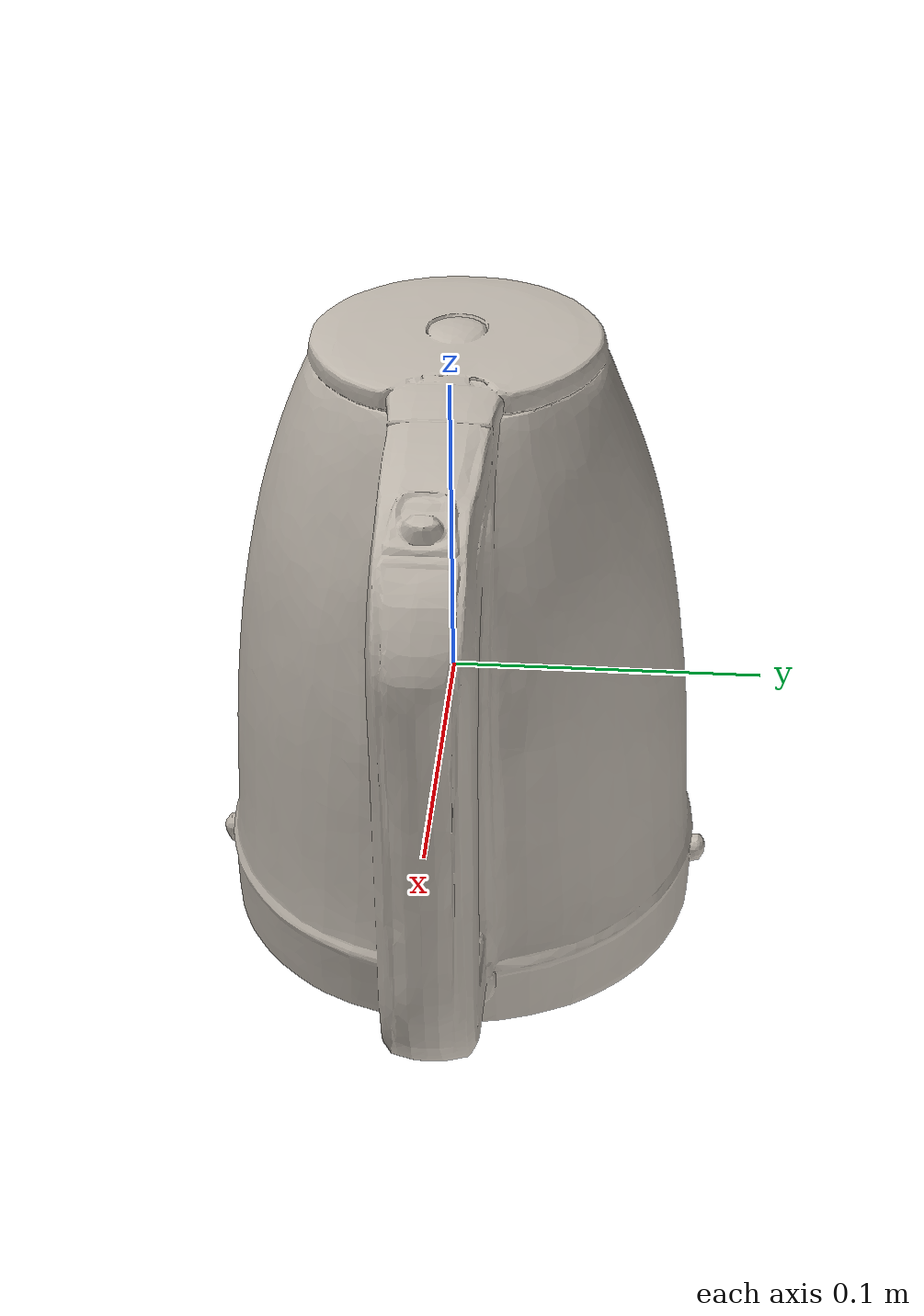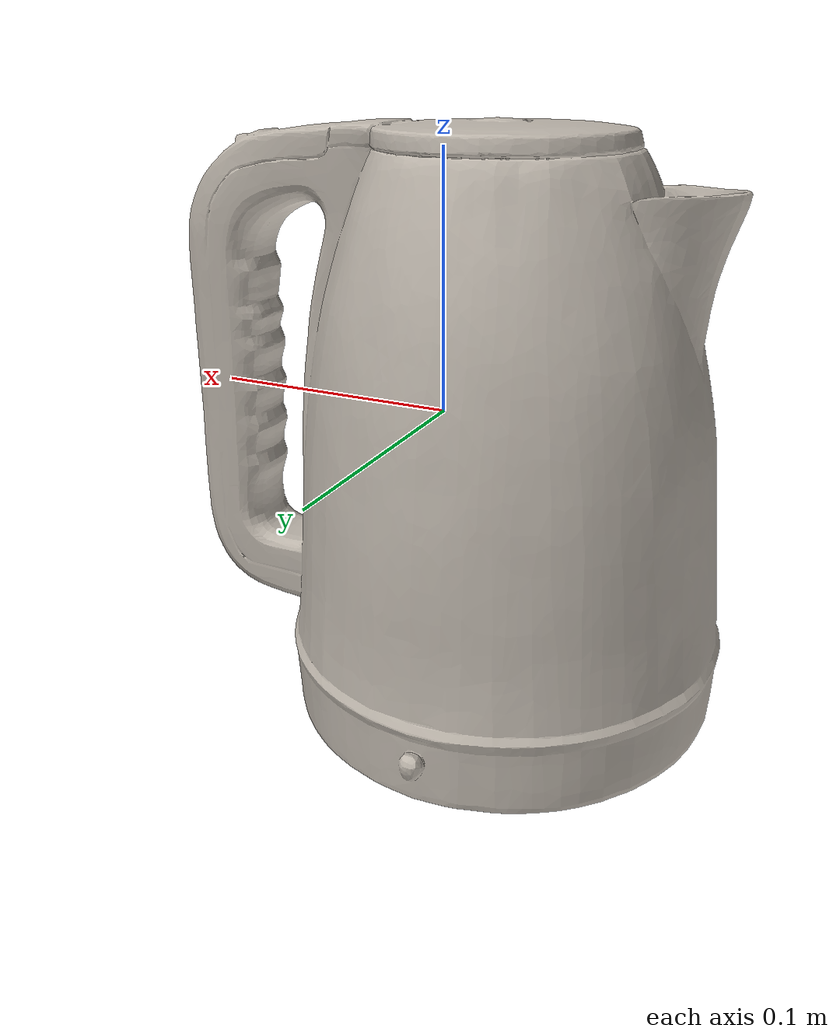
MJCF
<mujoco model="chaleira">
  <asset>
    <mesh file="visual/modelo.obj" name="chaleira_vis"/>
    <texture type="2d" name="tex_chaleira" file="visual/material_0.png"/>
    <material name="mat_chaleira" texture="tex_chaleira" specular="0.3" shininess="0.3"/>
    <mesh file="colisao/casco_0.obj" name="chaleira_col_0"/>
  </asset>
  <worldbody>
    <body>
      <body name="object">
        <geom type="mesh" mesh="chaleira_vis" conaffinity="0" contype="0" group="1" material="mat_chaleira"/>
        <geom class="collision" type="mesh" mesh="chaleira_col_0"/>
      </body>
      <site rgba="0 0 0 0" size="0.005" pos="0 0 -0.11000" name="bottom_site"/>
      <site rgba="0 0 0 0" size="0.005" pos="0 0 0.11000" name="top_site"/>
      <site rgba="0 0 0 0" size="0.005" pos="0.11123 0 0" name="horizontal_radius_site"/>
    </body>
  </worldbody>
  <default>
    <default class="visual">
      <geom group="1" density="100"/>
    </default>
    <default class="collision">
      <geom group="0" mass="0.8000" solimp="0.95 0.98 0.001" solref="0.004 1" rgba="1 1 1 0.25" friction="1.2 0.05 0.002"/>
    </default>
  </default>
</mujoco>
